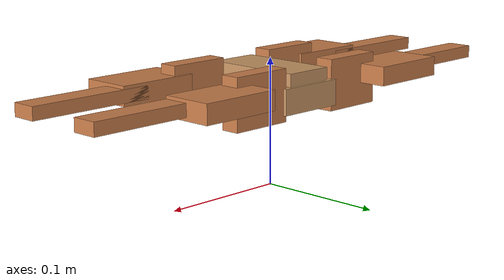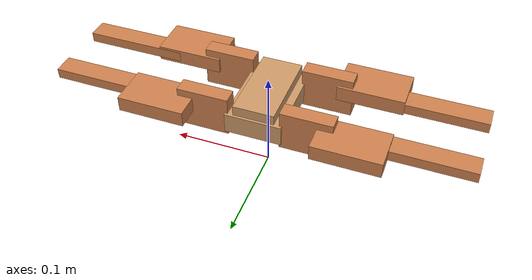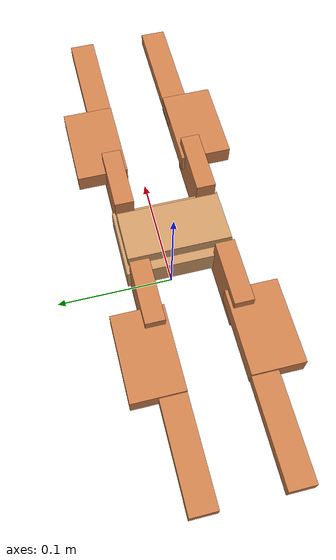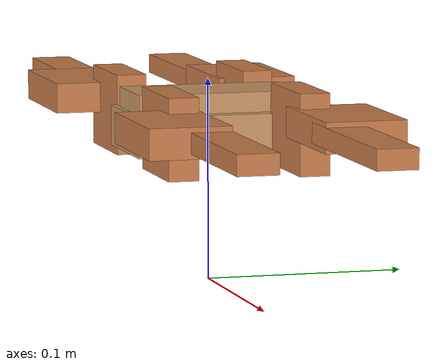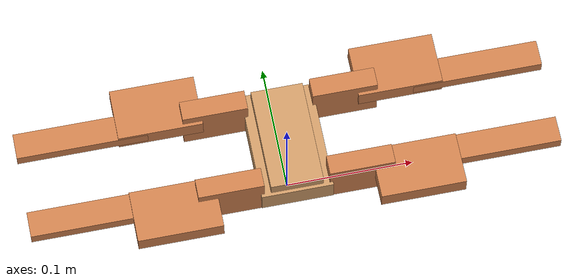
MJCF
<mujoco model="ant" >
  <compiler angle="degree" coordinate="local" inertiafromgeom="true"/>
  <option integrator="RK4" timestep="0.01"/>
  <custom>
    <numeric data="0 0 0.55 1.0 0 0 0 0 1.0 0 -1.0 0 -1.0 0 1.0" name="init_qpos"/>
  </custom>
  <default>
    <joint armature="1" damping="1" limited="true"/>
    <geom conaffinity="0" condim="3" density="5.0" friction="1.5 0.1 0.1" margin="0.01" rgba="0.8 0.6 0.4 1"/>
  </default>
  <worldbody>
    <body pos="0 0 0.075" name="torso">
      <geom pos="0 0 0" size="0.0275 0.0425 0.01" type="box"/>
      <body pos="0 0 0.015" name="top">
        <geom pos="0 0 0" size="0.02 0.04 0.005" type="box"/>
      </body>
      <body pos="0.0325 0.0325 0">
        <joint pos="0 0 0" axis="0 0 1" name="coxa-front-left" range="0 90" type="hinge"/>
        <geom pos="0.0175 0 0.005" size="0.025 0.0075 0.02" type="box" rgba=".8 .5 .3 1"/>
        <body pos="0.035 0 0.01">
          <joint pos="0 0 0" axis="0 1 0" name="femur-front-left" range="-45 60" type="hinge"/>
          <geom pos="0.025 0.01 0.0" size="0.0325 0.02 0.0075" type="box" rgba=".8 .5 .3 1"/>
          <body pos="0.05 0 0">
            <joint pos="0 0 0" axis="0 1 0" name="tibia-front-left" range="0 135" type="hinge"/>
            <geom pos="0.035 0 0" size="0.05 0.01 0.005" type="box" rgba=".8 .5 .3 1"/>
          </body>
        </body>
      </body>
      <body pos="-0.0325 0.0325 0">
        <joint pos="0 0 0" axis="0 0 -1" name="coxa-front-right" range="0 90" type="hinge"/>
        <geom pos="-0.0175 0 0.005" size="0.025 0.0075 0.02" type="box" rgba=".8 .5 .3 1"/>
        <body pos="-0.035 0 0.01">
          <joint pos="0 0 0" axis="0 -1 0" name="femur-front-right" range="-45 60" type="hinge"/>
          <geom pos="-0.025 0.01 0.00" size="0.0325 0.02 0.0075" type="box" rgba=".8 .5 .3 1"/>
          <body pos="-0.05 0 0">
            <joint pos="0 0 0" axis="0 -1 0" name="tibia-front-right" range="0 135" type="hinge"/>
            <geom pos="-0.035 0 0" size="0.05 0.01 0.005" type="box" rgba=".8 .5 .3 1"/>
          </body>
        </body>
      </body>
      <body pos="0.0325 -0.0325 0">
        <joint pos="0 0 0" axis="0 0 -1" name="coxa-back-left" range="0 90" type="hinge"/>
        <geom pos="0.0175 0 0.005" size="0.025 0.0075 0.02" type="box" rgba=".8 .5 .3 1"/>
        <body pos="0.035 0 0.01">
          <joint pos="0 0 0" axis="0 1 0" name="femur-back-left" range="-45 60" type="hinge"/>
          <geom pos="0.025 -0.01 0.00" size="0.0325 0.02 0.0075" type="box" rgba=".8 .5 .3 1"/>
          <body pos="0.05 0 0">
            <joint pos="0 0 0" axis="0 1 0" name="tibia-back-left" range="0 135" type="hinge"/>
            <geom pos="0.035 0 0" size="0.05 0.01 0.005" type="box" rgba=".8 .5 .3 1"/>
          </body>
        </body>
      </body>
      <body pos="-0.0325 -0.0325 0">
        <joint pos="0 0 0" axis="0 0 1" name="coxa-back-right" range="0 90" type="hinge"/>
        <geom pos="-0.0175 0 0.005" size="0.025 0.0075 0.02" type="box" rgba=".8 .5 .3 1"/>
        <body pos="-0.035 0 0.01">
          <joint pos="0 0 0" axis="0 -1 0" name="femur-back-right" range="-45 60" type="hinge"/>
          <geom pos="-0.025 -0.01 0.00" size="0.0325 0.02 0.0075" type="box" rgba=".8 .5 .3 1"/>
          <body pos="-0.05 0 0">
            <joint pos="0 0 0" axis="0 -1 0" name="tibia-back-right" range="0 135" type="hinge"/>
            <geom pos="-0.035 0 0" size="0.05 0.01 0.005" type="box" rgba=".8 .5 .3 1"/>
          </body>
        </body>
      </body>
    </body>
  </worldbody>
</mujoco>
